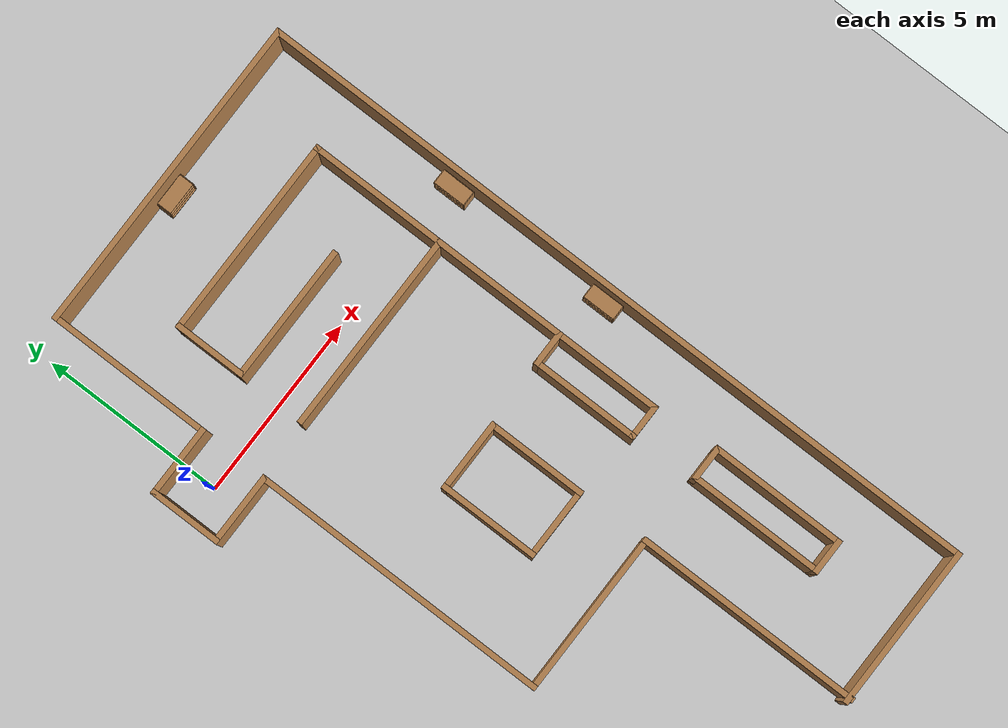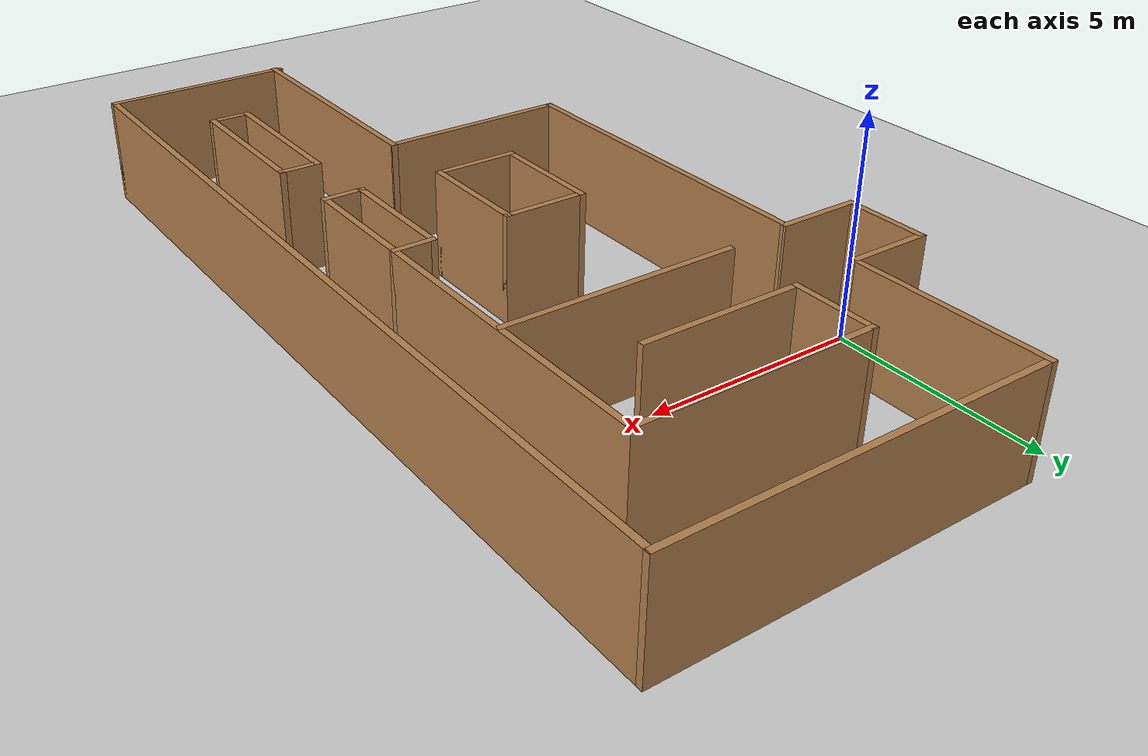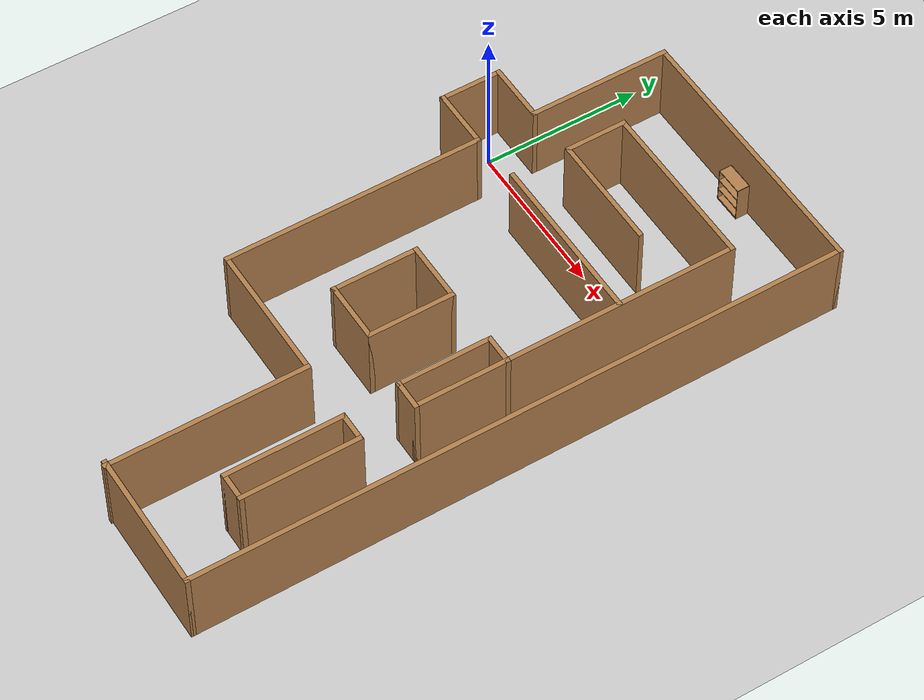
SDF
<sdf version="1.6">
 <world name="default">
  <light name="sun" type="directional">
   <pose>0 0 10 0 -0 0</pose>
   <diffuse>0.8 0.8 0.8 1</diffuse>
   <specular>0.2 0.2 0.2 1</specular>
   <attenuation>
    <range>1000</range>
    <constant>0.9</constant>
    <linear>0.01</linear>
    <quadratic>0.001</quadratic>
   </attenuation>
   <direction>-0.5 0.1 -0.9</direction>
  </light>
  <model name="ground_plane">
   <static>1</static>
   <link name="link">
    <collision name="collision">
     <geometry><plane><normal>0 0 1</normal><size>100 100</size></plane></geometry>
     <surface>
      <contact><collide_bitmask>65535</collide_bitmask></contact>
      <friction><ode><mu>100</mu><mu2>50</mu2></ode></friction>
     </surface>
    </collision>
    <visual name="visual">
     <cast_shadows>0</cast_shadows>
     <geometry><plane><normal>0 0 1</normal><size>100 100</size></plane></geometry>
     <material>
      <script><uri>file://media/materials/scripts/gazebo.material</uri><name>Gazebo/Grey</name></script>
     </material>
    </visual>
   </link>
  </model>
  <gravity>0 0 -9.8</gravity>
  <magnetic_field>6e-06 2.3e-05 -4.2e-05</magnetic_field>
  <atmosphere type="adiabatic"/>
  <physics name="default_physics" default="0" type="ode">
   <max_step_size>0.001</max_step_size>
   <real_time_factor>1</real_time_factor>
   <real_time_update_rate>1000</real_time_update_rate>
  </physics>
  <scene><ambient>0.4 0.4 0.4 1</ambient><background>0.7 0.7 0.7 1</background><shadows>1</shadows></scene>
  <audio><device>default</device></audio>
  <spherical_coordinates>
   <surface_model>EARTH_WGS84</surface_model>
   <latitude_deg>0</latitude_deg>
   <longitude_deg>0</longitude_deg>
   <elevation>0</elevation>
   <heading_deg>0</heading_deg>
  </spherical_coordinates>
  <model name="dans_basic_maze">
   <pose>4.32164 -4.89105 0 0 0 -1.57</pose>
   <link name="Wall_0">
    <collision name="Wall_0_Collision">
     <geometry><box><size>5.5 0.15 2.5</size></box></geometry>
     <pose>0 0 1.25 0 -0 0</pose>
    </collision>
    <visual name="Wall_0_Visual">
     <pose>0 0 1.25 0 -0 0</pose>
     <geometry><box><size>5.5 0.15 2.5</size></box></geometry>
     <material>
      <script><uri>file://media/materials/scripts/gazebo.material</uri><name>Gazebo/Wood</name></script>
      <ambient>1 1 1 1</ambient>
     </material>
     <meta><layer>0</layer></meta>
    </visual>
    <pose>-7.75378 0.921526 0 0 -0 1.5708</pose>
   </link>
   <link name="Wall_1">
    <collision name="Wall_1_Collision">
     <geometry><box><size>10.25 0.15 2.5</size></box></geometry>
     <pose>0 0 1.25 0 -0 0</pose>
    </collision>
    <visual name="Wall_1_Visual">
     <pose>0 0 1.25 0 -0 0</pose>
     <geometry><box><size>10.25 0.15 2.5</size></box></geometry>
     <material>
      <script><uri>file://media/materials/scripts/gazebo.material</uri><name>Gazebo/Wood</name></script>
      <ambient>1 1 1 1</ambient>
     </material>
     <meta><layer>0</layer></meta>
    </visual>
    <pose>-2.70378 3.59653 0 0 -0 0</pose>
   </link>
   <link name="Wall_11">
    <collision name="Wall_11_Collision">
     <geometry><box><size>5.5 0.15 2.5</size></box></geometry>
     <pose>0 0 1.25 0 -0 0</pose>
    </collision>
    <visual name="Wall_11_Visual">
     <pose>0 0 1.25 0 -0 0</pose>
     <geometry><box><size>5.5 0.15 2.5</size></box></geometry>
     <material>
      <script><uri>file://media/materials/scripts/gazebo.material</uri><name>Gazebo/Wood</name></script>
      <ambient>1 1 1 1</ambient>
     </material>
     <meta><layer>0</layer></meta>
    </visual>
    <pose>-4.08824 0.913758 0 0 -0 -1.5708</pose>
   </link>
   <link name="Wall_13">
    <collision name="Wall_13_Collision">
     <geometry><box><size>2.75 0.15 2.5</size></box></geometry>
     <pose>0 0 1.25 0 -0 0</pose>
    </collision>
    <visual name="Wall_13_Visual">
     <pose>0 0 1.25 0 -0 0</pose>
     <geometry><box><size>2.75 0.15 2.5</size></box></geometry>
     <material>
      <script><uri>file://media/materials/scripts/gazebo.material</uri><name>Gazebo/Wood</name></script>
      <ambient>1 1 1 1</ambient>
     </material>
     <meta><layer>0</layer></meta>
    </visual>
    <pose>0.866401 0.928739 0 0 -0 0</pose>
   </link>
   <link name="Wall_14">
    <collision name="Wall_14_Collision">
     <geometry><box><size>2 0.15 2.5</size></box></geometry>
     <pose>0 0 1.25 0 -0 0</pose>
    </collision>
    <visual name="Wall_14_Visual">
     <pose>0 0 1.25 0 -0 0</pose>
     <geometry><box><size>2 0.15 2.5</size></box></geometry>
     <material>
      <script><uri>file://media/materials/scripts/gazebo.material</uri><name>Gazebo/Wood</name></script>
      <ambient>1 1 1 1</ambient>
     </material>
     <meta><layer>0</layer></meta>
    </visual>
    <pose>2.1664 0.003739 0 0 -0 -1.5708</pose>
   </link>
   <link name="Wall_15">
    <collision name="Wall_15_Collision">
     <geometry><box><size>2.75 0.15 2.5</size></box></geometry>
     <pose>0 0 1.25 0 -0 0</pose>
    </collision>
    <visual name="Wall_15_Visual">
     <pose>0 0 1.25 0 -0 0</pose>
     <geometry><box><size>2.75 0.15 2.5</size></box></geometry>
     <material>
      <script><uri>file://media/materials/scripts/gazebo.material</uri><name>Gazebo/Wood</name></script>
      <ambient>1 1 1 1</ambient>
     </material>
     <meta><layer>0</layer></meta>
    </visual>
    <pose>0.866401 -0.921261 0 0 -0 3.14159</pose>
   </link>
   <link name="Wall_16">
    <collision name="Wall_16_Collision">
     <geometry><box><size>2 0.15 2.5</size></box></geometry>
     <pose>0 0 1.25 0 -0 0</pose>
    </collision>
    <visual name="Wall_16_Visual">
     <pose>0 0 1.25 0 -0 0</pose>
     <geometry><box><size>2 0.15 2.5</size></box></geometry>
     <material>
      <script><uri>file://media/materials/scripts/gazebo.material</uri><name>Gazebo/Wood</name></script>
      <ambient>1 1 1 1</ambient>
     </material>
     <meta><layer>0</layer></meta>
    </visual>
    <pose>-0.433599 0.003739 0 0 -0 1.5708</pose>
   </link>
   <link name="Wall_18">
    <collision name="Wall_18_Collision">
     <geometry><box><size>1 0.15 2.5</size></box></geometry>
     <pose>0 0 1.25 0 -0 0</pose>
    </collision>
    <visual name="Wall_18_Visual">
     <pose>0 0 1.25 0 -0 0</pose>
     <geometry><box><size>1 0.15 2.5</size></box></geometry>
     <material>
      <script><uri>file://media/materials/scripts/gazebo.material</uri><name>Gazebo/Wood</name></script>
      <ambient>1 1 1 1</ambient>
     </material>
     <meta><layer>0</layer></meta>
    </visual>
    <pose>4.12313 3.30254 0 0 -0 -1.5708</pose>
   </link>
   <link name="Wall_19">
    <collision name="Wall_19_Collision">
     <geometry><box><size>3.75 0.15 2.5</size></box></geometry>
     <pose>0 0 1.25 0 -0 0</pose>
    </collision>
    <visual name="Wall_19_Visual">
     <pose>0 0 1.25 0 -0 0</pose>
     <geometry><box><size>3.75 0.15 2.5</size></box></geometry>
     <material>
      <script><uri>file://media/materials/scripts/gazebo.material</uri><name>Gazebo/Wood</name></script>
      <ambient>1 1 1 1</ambient>
     </material>
     <meta><layer>0</layer></meta>
    </visual>
    <pose>5.92313 2.87754 0 0 -0 0</pose>
   </link>
   <link name="Wall_2">
    <collision name="Wall_2_Collision">
     <geometry><box><size>1 0.15 2.5</size></box></geometry>
     <pose>0 0 1.25 0 -0 0</pose>
    </collision>
    <visual name="Wall_2_Visual">
     <pose>0 0 1.25 0 -0 0</pose>
     <geometry><box><size>1 0.15 2.5</size></box></geometry>
     <material>
      <script><uri>file://media/materials/scripts/gazebo.material</uri><name>Gazebo/Wood</name></script>
      <ambient>1 1 1 1</ambient>
     </material>
     <meta><layer>0</layer></meta>
    </visual>
    <pose>2.34622 3.17153 0 0 -0 -1.5708</pose>
   </link>
   <link name="Wall_20">
    <collision name="Wall_20_Collision">
     <geometry><box><size>1 0.15 2.5</size></box></geometry>
     <pose>0 0 1.25 0 -0 0</pose>
    </collision>
    <visual name="Wall_20_Visual">
     <pose>0 0 1.25 0 -0 0</pose>
     <geometry><box><size>1 0.15 2.5</size></box></geometry>
     <material>
      <script><uri>file://media/materials/scripts/gazebo.material</uri><name>Gazebo/Wood</name></script>
      <ambient>1 1 1 1</ambient>
     </material>
     <meta><layer>0</layer></meta>
    </visual>
    <pose>7.72313 3.30254 0 0 -0 1.5708</pose>
   </link>
   <link name="Wall_21">
    <collision name="Wall_21_Collision">
     <geometry><box><size>3.75 0.15 2.5</size></box></geometry>
     <pose>0 0 1.25 0 -0 0</pose>
    </collision>
    <visual name="Wall_21_Visual">
     <pose>0 0 1.25 0 -0 0</pose>
     <geometry><box><size>3.75 0.15 2.5</size></box></geometry>
     <material>
      <script><uri>file://media/materials/scripts/gazebo.material</uri><name>Gazebo/Wood</name></script>
      <ambient>1 1 1 1</ambient>
     </material>
     <meta><layer>0</layer></meta>
    </visual>
    <pose>5.92313 3.72754 0 0 -0 3.14159</pose>
   </link>
   <link name="Wall_23">
    <collision name="Wall_23_Collision">
     <geometry><box><size>4.5 0.15 2.5</size></box></geometry>
     <pose>0 0 1.25 0 -0 0</pose>
    </collision>
    <visual name="Wall_23_Visual">
     <pose>0 0 1.25 0 -0 0</pose>
     <geometry><box><size>4.5 0.15 2.5</size></box></geometry>
     <material>
      <script><uri>file://media/materials/scripts/gazebo.material</uri><name>Gazebo/Wood</name></script>
      <ambient>1 1 1 1</ambient>
     </material>
     <meta><layer>0</layer></meta>
    </visual>
    <pose>4.1 -1.2 0 0 -0 -1.5708</pose>
   </link>
   <link name="Wall_3">
    <collision name="Wall_3_Collision">
     <geometry><box><size>3 0.15 2.5</size></box></geometry>
     <pose>0 0 1.25 0 -0 0</pose>
    </collision>
    <visual name="Wall_3_Visual">
     <pose>0 0 1.25 0 -0 0</pose>
     <geometry><box><size>3 0.15 2.5</size></box></geometry>
     <material>
      <script><uri>file://media/materials/scripts/gazebo.material</uri><name>Gazebo/Wood</name></script>
      <ambient>1 1 1 1</ambient>
     </material>
     <meta><layer>0</layer></meta>
    </visual>
    <pose>0.92122 2.74653 0 0 -0 3.14159</pose>
   </link>
   <link name="Wall_33">
    <collision name="Wall_33_Collision">
     <geometry><box><size>4.54626 0.15 2.5</size></box></geometry>
     <pose>0 0 1.25 0 -0 0</pose>
    </collision>
    <visual name="Wall_33_Visual">
     <pose>0 0 1.25 0 -0 0</pose>
     <geometry><box><size>4.54626 0.15 2.5</size></box></geometry>
     <material>
      <script><uri>file://media/materials/scripts/gazebo.material</uri><name>Gazebo/Wood</name></script>
      <ambient>1 1 1 1</ambient>
     </material>
     <meta><layer>0</layer></meta>
    </visual>
    <pose>-8.00187 -3.375 0 0 -0 3.14159</pose>
   </link>
   <link name="Wall_34">
    <collision name="Wall_34_Collision">
     <geometry><box><size>8.75 0.15 2.5</size></box></geometry>
     <pose>0 0 1.25 0 -0 0</pose>
    </collision>
    <visual name="Wall_34_Visual">
     <pose>0 0 1.25 0 -0 0</pose>
     <geometry><box><size>8.75 0.15 2.5</size></box></geometry>
     <material>
      <script><uri>file://media/materials/scripts/gazebo.material</uri><name>Gazebo/Wood</name></script>
      <ambient>1 1 1 1</ambient>
     </material>
     <meta><layer>0</layer></meta>
    </visual>
    <pose>-10.2 0.925 0 0 -0 1.5708</pose>
   </link>
   <link name="Wall_35">
    <collision name="Wall_35_Collision">
     <geometry><box><size>20.5 0.15 2.5</size></box></geometry>
     <pose>0 0 1.25 0 -0 0</pose>
    </collision>
    <visual name="Wall_35_Visual">
     <pose>0 0 1.25 0 -0 0</pose>
     <geometry><box><size>20.5 0.15 2.5</size></box></geometry>
     <material>
      <script><uri>file://media/materials/scripts/gazebo.material</uri><name>Gazebo/Wood</name></script>
      <ambient>1 1 1 1</ambient>
     </material>
     <meta><layer>0</layer></meta>
    </visual>
    <pose>-0.025 5.225 0 0 -0 0</pose>
   </link>
   <link name="Wall_36">
    <collision name="Wall_36_Collision">
     <geometry><box><size>4.5 0.15 2.5</size></box></geometry>
     <pose>0 0 1.25 0 -0 0</pose>
    </collision>
    <visual name="Wall_36_Visual">
     <pose>0 0 1.25 0 -0 0</pose>
     <geometry><box><size>4.5 0.15 2.5</size></box></geometry>
     <material>
      <script><uri>file://media/materials/scripts/gazebo.material</uri><name>Gazebo/Wood</name></script>
      <ambient>1 1 1 1</ambient>
     </material>
     <meta><layer>0</layer></meta>
    </visual>
    <pose>10.15 3.05 0 0 -0 -1.5708</pose>
   </link>
   <link name="Wall_38">
    <collision name="Wall_38_Collision">
     <geometry><box><size>6.25 0.15 2.5</size></box></geometry>
     <pose>0 0 1.25 0 -0 0</pose>
    </collision>
    <visual name="Wall_38_Visual">
     <pose>0 0 1.25 0 -0 0</pose>
     <geometry><box><size>6.25 0.15 2.5</size></box></geometry>
     <material>
      <script><uri>file://media/materials/scripts/gazebo.material</uri><name>Gazebo/Wood</name></script>
      <ambient>1 1 1 1</ambient>
     </material>
     <meta><layer>0</layer></meta>
    </visual>
    <pose>7.15 0.975 0 0 -0 0</pose>
   </link>
   <link name="Wall_40">
    <collision name="Wall_40_Collision">
     <geometry><box><size>2 0.15 2.5</size></box></geometry>
     <pose>0 0 1.25 0 -0 0</pose>
    </collision>
    <visual name="Wall_40_Visual">
     <pose>0 0 1.25 0 -0 0</pose>
     <geometry><box><size>2 0.15 2.5</size></box></geometry>
     <material>
      <script><uri>file://media/materials/scripts/gazebo.material</uri><name>Gazebo/Wood</name></script>
      <ambient>1 1 1 1</ambient>
     </material>
     <meta><layer>0</layer></meta>
    </visual>
    <pose>-6.82878 -1.75347 0 0 -0 0</pose>
   </link>
   <link name="Wall_41">
    <collision name="Wall_41_Collision">
     <geometry><box><size>3.75 0.15 2.5</size></box></geometry>
     <pose>0 0 1.25 0 -0 0</pose>
    </collision>
    <visual name="Wall_41_Visual">
     <pose>0 0 1.25 0 -0 0</pose>
     <geometry><box><size>3.75 0.15 2.5</size></box></geometry>
     <material>
      <script><uri>file://media/materials/scripts/gazebo.material</uri><name>Gazebo/Wood</name></script>
      <ambient>1 1 1 1</ambient>
     </material>
     <meta><layer>0</layer></meta>
    </visual>
    <pose>-5.90378 0.046526 0 0 -0 1.5708</pose>
   </link>
   <link name="Wall_43">
    <collision name="Wall_43_Collision">
     <geometry><box><size>2 0.15 2.5</size></box></geometry>
     <pose>0 0 1.25 0 -0 0</pose>
    </collision>
    <visual name="Wall_43_Visual">
     <pose>0 0 1.25 0 -0 0</pose>
     <geometry><box><size>2 0.15 2.5</size></box></geometry>
     <material>
      <script><uri>file://media/materials/scripts/gazebo.material</uri><name>Gazebo/Wood</name></script>
      <ambient>1 1 1 1</ambient>
     </material>
     <meta><layer>0</layer></meta>
    </visual>
    <pose>-5.80374 -4.3 0 0 -0 -1.5708</pose>
   </link>
   <link name="Wall_44">
    <collision name="Wall_44_Collision">
     <geometry><box><size>2 0.15 2.5</size></box></geometry>
     <pose>0 0 1.25 0 -0 0</pose>
    </collision>
    <visual name="Wall_44_Visual">
     <pose>0 0 1.25 0 -0 0</pose>
     <geometry><box><size>2 0.15 2.5</size></box></geometry>
     <material>
      <script><uri>file://media/materials/scripts/gazebo.material</uri><name>Gazebo/Wood</name></script>
      <ambient>1 1 1 1</ambient>
     </material>
     <meta><layer>0</layer></meta>
    </visual>
    <pose>-4.87874 -5.225 0 0 -0 0</pose>
   </link>
   <link name="Wall_45">
    <collision name="Wall_45_Collision">
     <geometry><box><size>2 0.15 2.5</size></box></geometry>
     <pose>0 0 1.25 0 -0 0</pose>
    </collision>
    <visual name="Wall_45_Visual">
     <pose>0 0 1.25 0 -0 0</pose>
     <geometry><box><size>2 0.15 2.5</size></box></geometry>
     <material>
      <script><uri>file://media/materials/scripts/gazebo.material</uri><name>Gazebo/Wood</name></script>
      <ambient>1 1 1 1</ambient>
     </material>
     <meta><layer>0</layer></meta>
    </visual>
    <pose>-3.95374 -4.3 0 0 -0 1.5708</pose>
   </link>
   <link name="Wall_46">
    <collision name="Wall_46_Collision">
     <geometry><box><size>8.20374 0.15 2.5</size></box></geometry>
     <pose>0 0 1.25 0 -0 0</pose>
    </collision>
    <visual name="Wall_46_Visual">
     <pose>0 0 1.25 0 -0 0</pose>
     <geometry><box><size>8.20374 0.15 2.5</size></box></geometry>
     <material>
      <script><uri>file://media/materials/scripts/gazebo.material</uri><name>Gazebo/Wood</name></script>
      <ambient>1 1 1 1</ambient>
     </material>
     <meta><layer>0</layer></meta>
    </visual>
    <pose>0.073131 -3.375 0 0 -0 0</pose>
   </link>
   <link name="Wall_6">
    <collision name="Wall_6_Collision">
     <geometry><box><size>1 0.15 2.5</size></box></geometry>
     <pose>0 0 1.25 0 -0 0</pose>
    </collision>
    <visual name="Wall_6_Visual">
     <pose>0 0 1.25 0 -0 0</pose>
     <geometry><box><size>1 0.15 2.5</size></box></geometry>
     <material>
      <script><uri>file://media/materials/scripts/gazebo.material</uri><name>Gazebo/Wood</name></script>
      <ambient>1 1 1 1</ambient>
     </material>
     <meta><layer>0</layer></meta>
    </visual>
    <pose>-0.50378 3.17153 0 0 -0 1.5708</pose>
   </link>
   <static>1</static>
  </model>
  <model name="bookshelf">
   <static>1</static>
   <link name="link">
    <inertial><mass>1</mass></inertial>
    <collision name="back">
     <pose>0 0.005 0.6 0 -0 0</pose>
     <geometry><box><size>0.9 0.01 1.2</size></box></geometry>
    </collision>
    <visual name="visual1">
     <pose>0 0.005 0.6 0 -0 0</pose>
     <geometry><box><size>0.9 0.01 1.2</size></box></geometry>
     <material>
      <script><uri>file://media/materials/scripts/gazebo.material</uri><name>Gazebo/Wood</name></script>
     </material>
    </visual>
    <collision name="left_side">
     <pose>0.45 -0.195 0.6 0 -0 0</pose>
     <geometry><box><size>0.02 0.4 1.2</size></box></geometry>
    </collision>
    <visual name="visual2">
     <pose>0.45 -0.195 0.6 0 -0 0</pose>
     <geometry><box><size>0.02 0.4 1.2</size></box></geometry>
     <material>
      <script><uri>file://media/materials/scripts/gazebo.material</uri><name>Gazebo/Wood</name></script>
     </material>
    </visual>
    <collision name="right_side">
     <pose>-0.45 -0.195 0.6 0 -0 0</pose>
     <geometry><box><size>0.02 0.4 1.2</size></box></geometry>
    </collision>
    <visual name="visual3">
     <pose>-0.45 -0.195 0.6 0 -0 0</pose>
     <geometry><box><size>0.02 0.4 1.2</size></box></geometry>
     <material>
      <script><uri>file://media/materials/scripts/gazebo.material</uri><name>Gazebo/Wood</name></script>
     </material>
    </visual>
    <collision name="bottom">
     <pose>0 -0.195 0.03 0 -0 0</pose>
     <geometry><box><size>0.88 0.4 0.06</size></box></geometry>
    </collision>
    <visual name="visual4">
     <pose>0 -0.195 0.03 0 -0 0</pose>
     <geometry><box><size>0.88 0.4 0.06</size></box></geometry>
     <material>
      <script><uri>file://media/materials/scripts/gazebo.material</uri><name>Gazebo/Wood</name></script>
     </material>
    </visual>
    <collision name="top">
     <pose>0 -0.195 1.19 0 -0 0</pose>
     <geometry><box><size>0.88 0.4 0.02</size></box></geometry>
    </collision>
    <visual name="visual5">
     <pose>0 -0.195 1.19 0 -0 0</pose>
     <geometry><box><size>0.88 0.4 0.02</size></box></geometry>
     <material>
      <script><uri>file://media/materials/scripts/gazebo.material</uri><name>Gazebo/Wood</name></script>
     </material>
    </visual>
    <collision name="low_shelf">
     <pose>0 -0.195 0.43 0 -0 0</pose>
     <geometry><box><size>0.88 0.4 0.02</size></box></geometry>
    </collision>
    <visual name="visual6">
     <pose>0 -0.195 0.43 0 -0 0</pose>
     <geometry><box><size>0.88 0.4 0.02</size></box></geometry>
     <material>
      <script><uri>file://media/materials/scripts/gazebo.material</uri><name>Gazebo/Wood</name></script>
     </material>
    </visual>
    <collision name="high_shelf">
     <pose>0 -0.195 0.8 0 -0 0</pose>
     <geometry><box><size>0.88 0.4 0.02</size></box></geometry>
    </collision>
    <visual name="visual7">
     <pose>0 -0.195 0.8 0 -0 0</pose>
     <geometry><box><size>0.88 0.4 0.02</size></box></geometry>
     <material>
      <script><uri>file://media/materials/scripts/gazebo.material</uri><name>Gazebo/Wood</name></script>
     </material>
    </visual>
   </link>
   <pose>9.44976 -0.184337 0 0 0 -1.57</pose>
  </model>
  <model name="bookshelf_clone">
   <static>1</static>
   <link name="link">
    <inertial><mass>1</mass></inertial>
    <collision name="back">
     <pose>0 0.005 0.6 0 -0 0</pose>
     <geometry><box><size>0.9 0.01 1.2</size></box></geometry>
    </collision>
    <visual name="visual1">
     <pose>0 0.005 0.6 0 -0 0</pose>
     <geometry><box><size>0.9 0.01 1.2</size></box></geometry>
     <material>
      <script><uri>file://media/materials/scripts/gazebo.material</uri><name>Gazebo/Wood</name></script>
     </material>
    </visual>
    <collision name="left_side">
     <pose>0.45 -0.195 0.6 0 -0 0</pose>
     <geometry><box><size>0.02 0.4 1.2</size></box></geometry>
    </collision>
    <visual name="visual2">
     <pose>0.45 -0.195 0.6 0 -0 0</pose>
     <geometry><box><size>0.02 0.4 1.2</size></box></geometry>
     <material>
      <script><uri>file://media/materials/scripts/gazebo.material</uri><name>Gazebo/Wood</name></script>
     </material>
    </visual>
    <collision name="right_side">
     <pose>-0.45 -0.195 0.6 0 -0 0</pose>
     <geometry><box><size>0.02 0.4 1.2</size></box></geometry>
    </collision>
    <visual name="visual3">
     <pose>-0.45 -0.195 0.6 0 -0 0</pose>
     <geometry><box><size>0.02 0.4 1.2</size></box></geometry>
     <material>
      <script><uri>file://media/materials/scripts/gazebo.material</uri><name>Gazebo/Wood</name></script>
     </material>
    </visual>
    <collision name="bottom">
     <pose>0 -0.195 0.03 0 -0 0</pose>
     <geometry><box><size>0.88 0.4 0.06</size></box></geometry>
    </collision>
    <visual name="visual4">
     <pose>0 -0.195 0.03 0 -0 0</pose>
     <geometry><box><size>0.88 0.4 0.06</size></box></geometry>
     <material>
      <script><uri>file://media/materials/scripts/gazebo.material</uri><name>Gazebo/Wood</name></script>
     </material>
    </visual>
    <collision name="top">
     <pose>0 -0.195 1.19 0 -0 0</pose>
     <geometry><box><size>0.88 0.4 0.02</size></box></geometry>
    </collision>
    <visual name="visual5">
     <pose>0 -0.195 1.19 0 -0 0</pose>
     <geometry><box><size>0.88 0.4 0.02</size></box></geometry>
     <material>
      <script><uri>file://media/materials/scripts/gazebo.material</uri><name>Gazebo/Wood</name></script>
     </material>
    </visual>
    <collision name="low_shelf">
     <pose>0 -0.195 0.43 0 -0 0</pose>
     <geometry><box><size>0.88 0.4 0.02</size></box></geometry>
    </collision>
    <visual name="visual6">
     <pose>0 -0.195 0.43 0 -0 0</pose>
     <geometry><box><size>0.88 0.4 0.02</size></box></geometry>
     <material>
      <script><uri>file://media/materials/scripts/gazebo.material</uri><name>Gazebo/Wood</name></script>
     </material>
    </visual>
    <collision name="high_shelf">
     <pose>0 -0.195 0.8 0 -0 0</pose>
     <geometry><box><size>0.88 0.4 0.02</size></box></geometry>
    </collision>
    <visual name="visual7">
     <pose>0 -0.195 0.8 0 -0 0</pose>
     <geometry><box><size>0.88 0.4 0.02</size></box></geometry>
     <material>
      <script><uri>file://media/materials/scripts/gazebo.material</uri><name>Gazebo/Wood</name></script>
     </material>
    </visual>
   </link>
   <pose>9.46803 -4.70831 0 0 0 -1.57</pose>
  </model>
  <model name="bookshelf_0">
   <static>1</static>
   <link name="link">
    <inertial><mass>1</mass></inertial>
    <collision name="back">
     <pose>0 0.005 0.6 0 -0 0</pose>
     <geometry><box><size>0.9 0.01 1.2</size></box></geometry>
    </collision>
    <visual name="visual1">
     <pose>0 0.005 0.6 0 -0 0</pose>
     <geometry><box><size>0.9 0.01 1.2</size></box></geometry>
     <material>
      <script><uri>file://media/materials/scripts/gazebo.material</uri><name>Gazebo/Wood</name></script>
     </material>
    </visual>
    <collision name="left_side">
     <pose>0.45 -0.195 0.6 0 -0 0</pose>
     <geometry><box><size>0.02 0.4 1.2</size></box></geometry>
    </collision>
    <visual name="visual2">
     <pose>0.45 -0.195 0.6 0 -0 0</pose>
     <geometry><box><size>0.02 0.4 1.2</size></box></geometry>
     <material>
      <script><uri>file://media/materials/scripts/gazebo.material</uri><name>Gazebo/Wood</name></script>
     </material>
    </visual>
    <collision name="right_side">
     <pose>-0.45 -0.195 0.6 0 -0 0</pose>
     <geometry><box><size>0.02 0.4 1.2</size></box></geometry>
    </collision>
    <visual name="visual3">
     <pose>-0.45 -0.195 0.6 0 -0 0</pose>
     <geometry><box><size>0.02 0.4 1.2</size></box></geometry>
     <material>
      <script><uri>file://media/materials/scripts/gazebo.material</uri><name>Gazebo/Wood</name></script>
     </material>
    </visual>
    <collision name="bottom">
     <pose>0 -0.195 0.03 0 -0 0</pose>
     <geometry><box><size>0.88 0.4 0.06</size></box></geometry>
    </collision>
    <visual name="visual4">
     <pose>0 -0.195 0.03 0 -0 0</pose>
     <geometry><box><size>0.88 0.4 0.06</size></box></geometry>
     <material>
      <script><uri>file://media/materials/scripts/gazebo.material</uri><name>Gazebo/Wood</name></script>
     </material>
    </visual>
    <collision name="top">
     <pose>0 -0.195 1.19 0 -0 0</pose>
     <geometry><box><size>0.88 0.4 0.02</size></box></geometry>
    </collision>
    <visual name="visual5">
     <pose>0 -0.195 1.19 0 -0 0</pose>
     <geometry><box><size>0.88 0.4 0.02</size></box></geometry>
     <material>
      <script><uri>file://media/materials/scripts/gazebo.material</uri><name>Gazebo/Wood</name></script>
     </material>
    </visual>
    <collision name="low_shelf">
     <pose>0 -0.195 0.43 0 -0 0</pose>
     <geometry><box><size>0.88 0.4 0.02</size></box></geometry>
    </collision>
    <visual name="visual6">
     <pose>0 -0.195 0.43 0 -0 0</pose>
     <geometry><box><size>0.88 0.4 0.02</size></box></geometry>
     <material>
      <script><uri>file://media/materials/scripts/gazebo.material</uri><name>Gazebo/Wood</name></script>
     </material>
    </visual>
    <collision name="high_shelf">
     <pose>0 -0.195 0.8 0 -0 0</pose>
     <geometry><box><size>0.88 0.4 0.02</size></box></geometry>
    </collision>
    <visual name="visual7">
     <pose>0 -0.195 0.8 0 -0 0</pose>
     <geometry><box><size>0.88 0.4 0.02</size></box></geometry>
     <material>
      <script><uri>file://media/materials/scripts/gazebo.material</uri><name>Gazebo/Wood</name></script>
     </material>
    </visual>
   </link>
   <pose>5.03498 5.21476 0 0 -0 0</pose>
  </model>
 </world>
</sdf>
